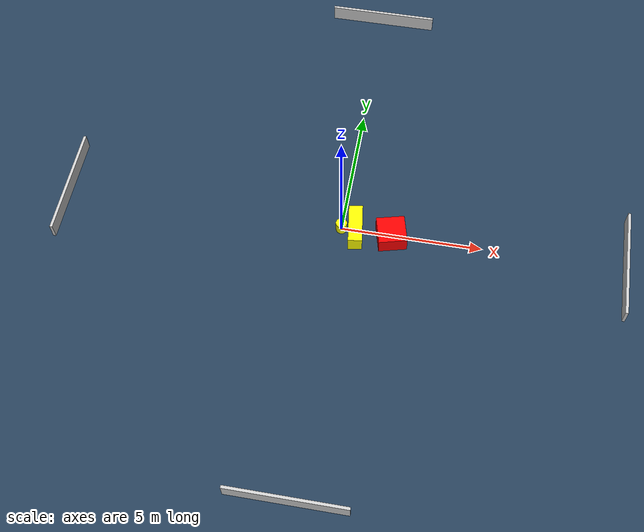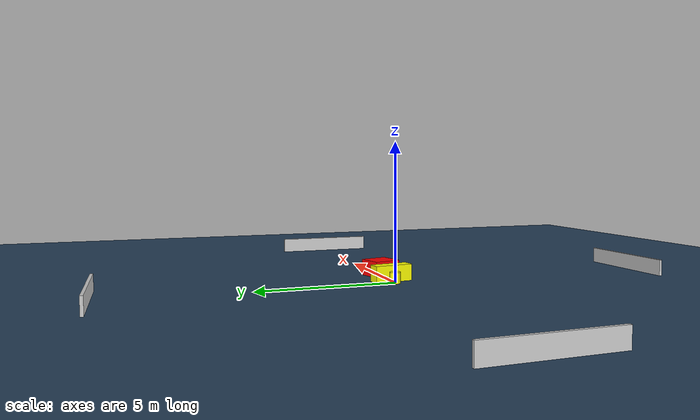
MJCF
<?xml version="1.0" ?>
<mujoco model="generated_environment">
  <option timestep="0.01" integrator="RK4" cone="elliptic"/>
  <default>
    <geom density="1"/>
  </default>
  <asset>
    <texture builtin="gradient" height="3072" name="skybox" rgb1="0.3 0.5 0.7" rgb2="0 0 0" type="skybox" width="512"/>
    <texture builtin="checker" height="300" name="groundplane" rgb1="0.2 0.3 0.4" rgb2="0.1 0.2 0.3" type="2d" width="300"/>
    <material name="groundplane" reflectance="0.2" texrepeat="5 5" texture="groundplane"/>
  </asset>
  <worldbody>
    <light dir="0 0 -1" directional="true" pos="0 0 1.5"/>
    <geom condim="3" friction="0.5 0.005 0.001" material="groundplane" name="floor" pos="0 0 0" size="0 0 0.05" type="plane"/>
    <body name="walls">
      <geom name="wall_1" condim="4" pos="-10.0 0.0 0.3" rgba="0.800000011920929 0.800000011920929 0.800000011920929 1.0" size="0.05 2.0 0.3" type="box"/>
      <geom name="wall_2" condim="4" pos="10.0 0.0 0.3" rgba="0.800000011920929 0.800000011920929 0.800000011920929 1.0" size="0.05 2.0 0.3" type="box"/>
      <geom name="wall_3" condim="4" pos="0.0 -10.0 0.3" rgba="0.800000011920929 0.800000011920929 0.800000011920929 1.0" size="2.0 0.05 0.3" type="box"/>
      <geom name="wall_4" condim="4" pos="0.0 10.0 0.3" rgba="0.800000011920929 0.800000011920929 0.800000011920929 1.0" size="2.0 0.05 0.3" type="box"/>
    </body>
    <body name="robot">
      <joint name="joint_x" type="slide" pos="0 0 0" axis="1 0 0"/>
      <joint name="joint_y" type="slide" pos="0 0 0" axis="0 1 0"/>
      <geom name="robot" type="cylinder" pos="0.0 0.0 0.2" size="0.2 0.2 0.0" mass="5.0" friction="1.0 0.005 0.0001" condim="4" rgba="1.0 1.0 0.0 1.0"/>
    </body>
    <body name="obstacle_1_movable">
      <geom name="obstacle_1_movable" condim="4" pos="0.5043266851851613 -0.03453815610346075 0.3" euler="0 0 7.830341485432428" friction="0.0 0.005 0.001" rgba="1.0 1.0 0.0 1.0" size="0.24700908466501137 0.7189906080130075 0.3" type="box" mass="0.1"/>
      <joint type="free"/>
    </body>
    <body name="obstacle_2_static">
      <geom name="obstacle_2_static" condim="4" pos="1.7962161882350824 -0.07481825158667074 0.3" euler="0 0 104.30540966373121" friction="0.0 0.005 0.001" rgba="1.0 0.0 0.0 1.0" size="0.5050196370736894 0.49958295243241985 0.3" type="box"/>
    </body>
  </worldbody>
  <actuator>
    <motor name="actuator_x" joint="joint_x" gear="1" ctrlrange="-1 1"/>
    <motor name="actuator_y" joint="joint_y" gear="1" ctrlrange="-1 1"/>
  </actuator>
</mujoco>
